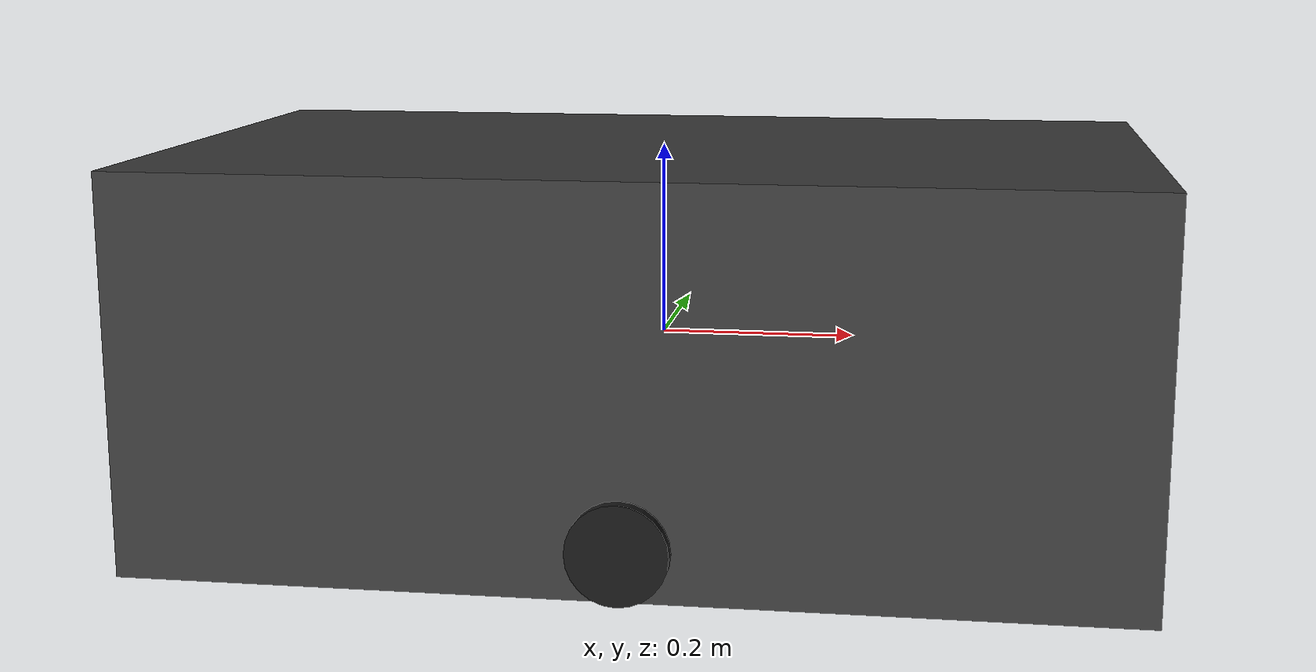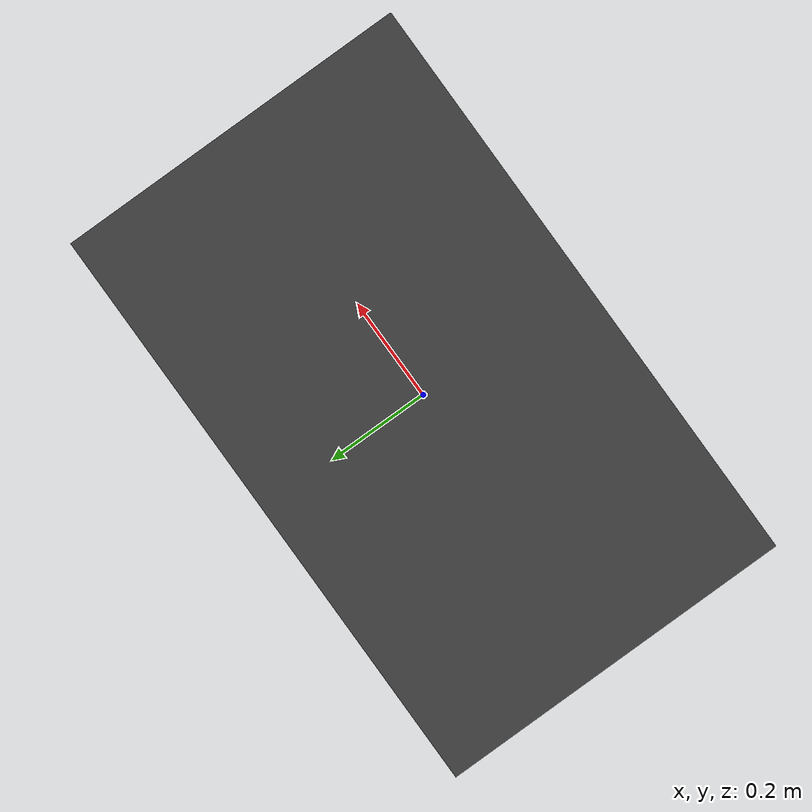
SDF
<?xml version="1.0"?>
<sdf version="1.9">
  <model name="recon">
    <static>false</static>

    <!-- Body: box 1.0 x 0.6 x 0.4 m, mass 500 kg -->
    <link name="base_link">
      <inertial>
        <mass>500</mass>
        <inertia>
          <ixx>21.67</ixx><ixy>0</ixy><ixz>0</ixz>
          <iyy>48.33</iyy><iyz>0</iyz>
          <izz>56.67</izz>
        </inertia>
      </inertial>
      <collision name="body_collision">
        <geometry>
          <box><size>1.0 0.6 0.4</size></box>
        </geometry>
      </collision>
      <visual name="body_visual">
        <geometry>
          <box><size>1.0 0.6 0.4</size></box>
        </geometry>
        <material>
          <ambient>0.25 0.25 0.25 1</ambient>
          <diffuse>0.25 0.25 0.25 1</diffuse>
        </material>
      </visual>

      <!-- 2D Lidar sensor (360 deg, 100 m range, 10 Hz) -->
      <sensor name="lidar" type="gpu_lidar">
        <pose>0 0 0.22 0 0 0</pose>
        <topic>scan</topic>
        <update_rate>10</update_rate>
        <lidar>
          <scan>
            <horizontal>
              <samples>360</samples>
              <resolution>1</resolution>
              <min_angle>0</min_angle>
              <max_angle>6.283185</max_angle>
            </horizontal>
          </scan>
          <range>
            <min>0.1</min>
            <max>100.0</max>
          </range>
        </lidar>
        <always_on>true</always_on>
        <visualize>true</visualize>
      </sensor>

      <!-- IMU sensor (50 Hz) -->
      <sensor name="imu" type="imu">
        <update_rate>50</update_rate>
        <always_on>true</always_on>
      </sensor>

      <!-- Contact sensor -->
      <sensor name="contact" type="contact">
        <contact>
          <collision>body_collision</collision>
        </contact>
        <update_rate>10</update_rate>
        <always_on>true</always_on>
      </sensor>
    </link>

    <!-- Left wheel -->
    <link name="left_wheel">
      <pose>0 0.3 -0.15 -1.5708 0 0</pose>
      <inertial>
        <mass>5</mass>
        <inertia>
          <ixx>0.0042</ixx><ixy>0</ixy><ixz>0</ixz>
          <iyy>0.0042</iyy><iyz>0</iyz>
          <izz>0.00625</izz>
        </inertia>
      </inertial>
      <collision name="left_wheel_collision">
        <geometry>
          <cylinder><radius>0.05</radius><length>0.03</length></cylinder>
        </geometry>
      </collision>
      <visual name="left_wheel_visual">
        <geometry>
          <cylinder><radius>0.05</radius><length>0.03</length></cylinder>
        </geometry>
        <material>
          <ambient>0.1 0.1 0.1 1</ambient>
          <diffuse>0.1 0.1 0.1 1</diffuse>
        </material>
      </visual>
    </link>

    <!-- Right wheel -->
    <link name="right_wheel">
      <pose>0 -0.3 -0.15 -1.5708 0 0</pose>
      <inertial>
        <mass>5</mass>
        <inertia>
          <ixx>0.0042</ixx><ixy>0</ixy><ixz>0</ixz>
          <iyy>0.0042</iyy><iyz>0</iyz>
          <izz>0.00625</izz>
        </inertia>
      </inertial>
      <collision name="right_wheel_collision">
        <geometry>
          <cylinder><radius>0.05</radius><length>0.03</length></cylinder>
        </geometry>
      </collision>
      <visual name="right_wheel_visual">
        <geometry>
          <cylinder><radius>0.05</radius><length>0.03</length></cylinder>
        </geometry>
        <material>
          <ambient>0.1 0.1 0.1 1</ambient>
          <diffuse>0.1 0.1 0.1 1</diffuse>
        </material>
      </visual>
    </link>

    <!-- Caster (frictionless sphere) -->
    <link name="caster">
      <pose>-0.4 0 -0.18 0 0 0</pose>
      <inertial>
        <mass>2</mass>
        <inertia>
          <ixx>0.0005</ixx><ixy>0</ixy><ixz>0</ixz>
          <iyy>0.0005</iyy><iyz>0</iyz>
          <izz>0.0005</izz>
        </inertia>
      </inertial>
      <collision name="caster_collision">
        <geometry>
          <sphere><radius>0.02</radius></sphere>
        </geometry>
        <surface>
          <friction>
            <ode><mu>0</mu><mu2>0</mu2></ode>
          </friction>
        </surface>
      </collision>
    </link>

    <!-- Joints -->
    <joint name="left_wheel_joint" type="revolute">
      <parent>base_link</parent>
      <child>left_wheel</child>
      <axis><xyz>0 0 1</xyz></axis>
    </joint>
    <joint name="right_wheel_joint" type="revolute">
      <parent>base_link</parent>
      <child>right_wheel</child>
      <axis><xyz>0 0 1</xyz></axis>
    </joint>
    <joint name="caster_joint" type="ball">
      <parent>base_link</parent>
      <child>caster</child>
    </joint>

    <!-- Differential drive plugin -->
    <plugin filename="gz-sim-diff-drive-system" name="gz::sim::systems::DiffDrive">
      <left_joint>left_wheel_joint</left_joint>
      <right_joint>right_wheel_joint</right_joint>
      <wheel_separation>0.6</wheel_separation>
      <wheel_radius>0.05</wheel_radius>
      <max_linear_acceleration>5.0</max_linear_acceleration>
      <max_linear_velocity>40.0</max_linear_velocity>
      <max_angular_velocity>1.5</max_angular_velocity>
      <topic>cmd_vel</topic>
      <odom_topic>odom</odom_topic>
    </plugin>

    <!-- Pose publisher -->
    <plugin filename="gz-sim-pose-publisher-system" name="gz::sim::systems::PosePublisher">
      <publish_link_pose>false</publish_link_pose>
      <publish_model_pose>true</publish_model_pose>
      <update_frequency>50</update_frequency>
    </plugin>
  </model>
</sdf>
